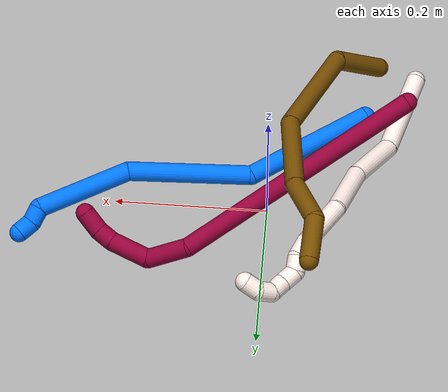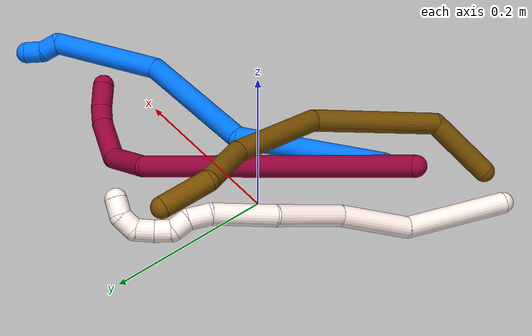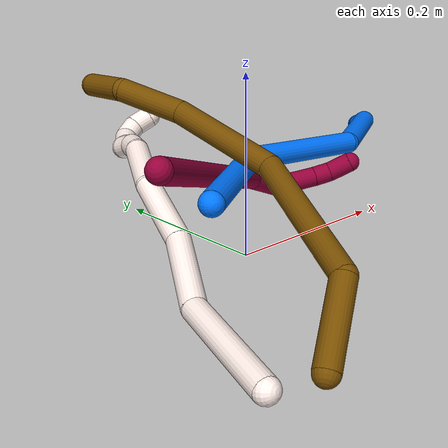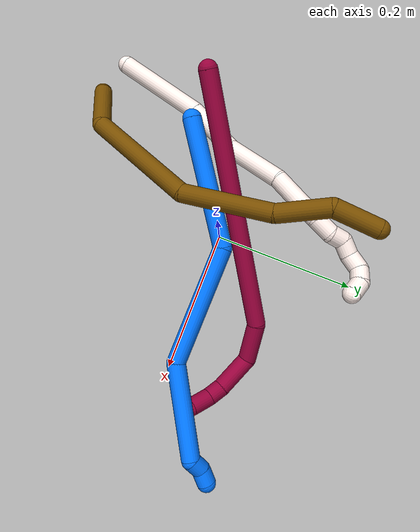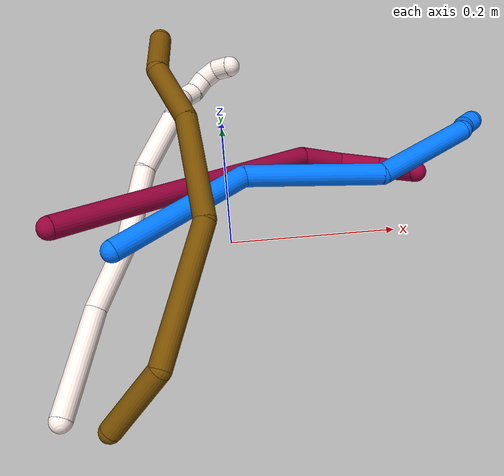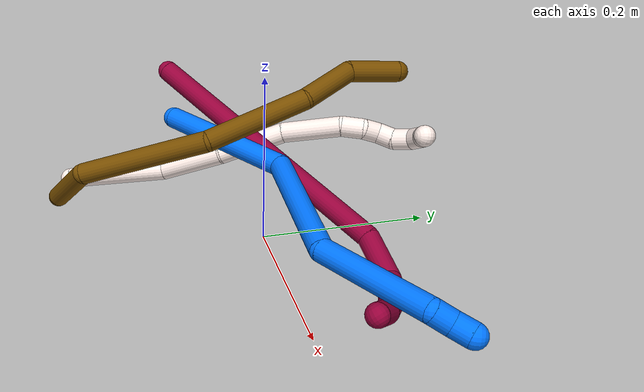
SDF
<sdf version="1.7">
 <world name="default">
  <model name="photoneo_s_sensor">
   <static>1</static>
   <pose>0 0 2 1.57079 1.57079 3.14159</pose>
   <link name="link">
    <inertial><mass>0.1</mass></inertial>
    <sensor name="sensor" type="depth">
     <update_rate>30</update_rate>
     <camera>
      <horizontal_fov>1.22</horizontal_fov>
      <image><width>1920</width><height>1200</height><format>B8G8R8</format></image>
      <clip><near>0.1</near><far>4</far></clip>
      <depth_camera><output>points</output></depth_camera>
     </camera>
     <plugin name="camera_plugin" filename="libgazebo_ros_depth_camera.so">
      <baseline>0.2</baseline>
      <alwaysOn>1</alwaysOn>
      <updateRate>0.0</updateRate>
      <cameraName>camera_ir</cameraName>
      <imageTopicName>/camera/color/image_raw</imageTopicName>
      <cameraInfoTopicName>/camera/color/camera_info</cameraInfoTopicName>
      <depthImageTopicName>/camera/depth/image_raw</depthImageTopicName>
      <depthImageCameraInfoTopicName>/camera/depth/camera_info</depthImageCameraInfoTopicName>
      <pointCloudTopicName>/camera/depth/points</pointCloudTopicName>
      <frameName>fr_optical</frameName>
      <pointCloudCutoff>0.1</pointCloudCutoff>
      <pointCloudCutoffMax>2.0</pointCloudCutoffMax>
      <distortionK1>0</distortionK1>
      <distortionK2>0</distortionK2>
      <distortionK3>0</distortionK3>
      <distortionT1>0</distortionT1>
      <distortionT2>0</distortionT2>
      <CxPrime>0</CxPrime>
      <Cx>0</Cx>
      <Cy>0</Cy>
      <focalLength>0</focalLength>
      <hackBaseline>0</hackBaseline>
     </plugin>
    </sensor>
   </link>
  </model>
  <model name="8">
   <static>0</static>
   <link name="8">
    <collision name="collision-cylinder-e_1_1_4">
     <pose>0.035701 0.059109 -0.155393 -2.77811 0.211523 -1.04767</pose>
     <geometry><cylinder><radius>0.0125</radius><length>0.340091</length></cylinder></geometry>
     <surface>
      <friction><ode><mu>1.16</mu><mu2>1.16</mu2><slip1>0</slip1><slip2>0</slip2></ode></friction>
      <contact><ode><kp>1e+06</kp><kd>1</kd><max_vel>0</max_vel><min_depth>0.001</min_depth></ode></contact>
     </surface>
    </collision>
    <visual name="visual-cylinder-e_1_1_4">
     <pose>0.035701 0.059109 -0.155393 -2.77811 0.211523 -1.04767</pose>
     <geometry><cylinder><radius>0.0125</radius><length>0.340091</length></cylinder></geometry>
     <material><ambient>0.584314 0 0.227451 1</ambient></material>
    </visual>
    <collision name="collision-cylinder-e_2_4_5">
     <pose>0.083953 0.118422 -0.335914 -3.1335 0.463249 -3.10729</pose>
     <geometry><cylinder><radius>0.0125</radius><length>0.056178</length></cylinder></geometry>
     <surface>
      <friction><ode><mu>1.16</mu><mu2>1.16</mu2><slip1>0</slip1><slip2>0</slip2></ode></friction>
      <contact><ode><kp>1e+06</kp><kd>1</kd><max_vel>0</max_vel><min_depth>0.001</min_depth></ode></contact>
     </surface>
    </collision>
    <visual name="visual-cylinder-e_2_4_5">
     <pose>0.083953 0.118422 -0.335914 -3.1335 0.463249 -3.10729</pose>
     <geometry><cylinder><radius>0.0125</radius><length>0.056178</length></cylinder></geometry>
     <material><ambient>0.584314 0 0.227451 1</ambient></material>
    </visual>
    <collision name="collision-cylinder-e_3_5_6">
     <pose>0.120848 0.116862 -0.370821 2.96326 1.18323 2.87703</pose>
     <geometry><cylinder><radius>0.0125</radius><length>0.052586</length></cylinder></geometry>
     <surface>
      <friction><ode><mu>1.16</mu><mu2>1.16</mu2><slip1>0</slip1><slip2>0</slip2></ode></friction>
      <contact><ode><kp>1e+06</kp><kd>1</kd><max_vel>0</max_vel><min_depth>0.001</min_depth></ode></contact>
     </surface>
    </collision>
    <visual name="visual-cylinder-e_3_5_6">
     <pose>0.120848 0.116862 -0.370821 2.96326 1.18323 2.87703</pose>
     <geometry><cylinder><radius>0.0125</radius><length>0.052586</length></cylinder></geometry>
     <material><ambient>0.584314 0 0.227451 1</ambient></material>
    </visual>
    <collision name="collision-cylinder-e_4_6_7">
     <pose>0.155932 0.113678 -0.382267 2.43553 1.36961 2.2939</pose>
     <geometry><cylinder><radius>0.0125</radius><length>0.021926</length></cylinder></geometry>
     <surface>
      <friction><ode><mu>1.16</mu><mu2>1.16</mu2><slip1>0</slip1><slip2>0</slip2></ode></friction>
      <contact><ode><kp>1e+06</kp><kd>1</kd><max_vel>0</max_vel><min_depth>0.001</min_depth></ode></contact>
     </surface>
    </collision>
    <visual name="visual-cylinder-e_4_6_7">
     <pose>0.155932 0.113678 -0.382267 2.43553 1.36961 2.2939</pose>
     <geometry><cylinder><radius>0.0125</radius><length>0.021926</length></cylinder></geometry>
     <material><ambient>0.584314 0 0.227451 1</ambient></material>
    </visual>
    <collision name="collision-cylinder-e_5_7_2">
     <pose>0.181125 0.110848 -0.382306 0.71342 1.42286 0.621641</pose>
     <geometry><cylinder><radius>0.0125</radius><length>0.02922</length></cylinder></geometry>
     <surface>
      <friction><ode><mu>1.16</mu><mu2>1.16</mu2><slip1>0</slip1><slip2>0</slip2></ode></friction>
      <contact><ode><kp>1e+06</kp><kd>1</kd><max_vel>0</max_vel><min_depth>0.001</min_depth></ode></contact>
     </surface>
    </collision>
    <visual name="visual-cylinder-e_5_7_2">
     <pose>0.181125 0.110848 -0.382306 0.71342 1.42286 0.621641</pose>
     <geometry><cylinder><radius>0.0125</radius><length>0.02922</length></cylinder></geometry>
     <material><ambient>0.584314 0 0.227451 1</ambient></material>
    </visual>
    <collision name="collision-sphere-2">
     <pose>0.195575 0.109438 -0.380678 0 -0 0</pose>
     <geometry><sphere><radius>0.0125</radius></sphere></geometry>
     <surface>
      <friction><ode><mu>1.16</mu><mu2>1.16</mu2><slip1>0</slip1><slip2>0</slip2></ode></friction>
      <contact><ode><kp>1e+06</kp><kd>1</kd><max_vel>0</max_vel><min_depth>0.001</min_depth></ode></contact>
     </surface>
    </collision>
    <visual name="visual-sphere-2">
     <pose>0.195575 0.109438 -0.380678 0 -0 0</pose>
     <geometry><sphere><radius>0.0125</radius></sphere></geometry>
     <material><ambient>0.584314 0 0.227451 1</ambient></material>
    </visual>
    <collision name="collision-sphere-7">
     <pose>0.166674 0.112257 -0.383934 0 -0 0</pose>
     <geometry><sphere><radius>0.0125</radius></sphere></geometry>
     <surface>
      <friction><ode><mu>1.16</mu><mu2>1.16</mu2><slip1>0</slip1><slip2>0</slip2></ode></friction>
      <contact><ode><kp>1e+06</kp><kd>1</kd><max_vel>0</max_vel><min_depth>0.001</min_depth></ode></contact>
     </surface>
    </collision>
    <visual name="visual-sphere-7">
     <pose>0.166674 0.112257 -0.383934 0 -0 0</pose>
     <geometry><sphere><radius>0.0125</radius></sphere></geometry>
     <material><ambient>0.584314 0 0.227451 1</ambient></material>
    </visual>
    <collision name="collision-sphere-6">
     <pose>0.145191 0.1151 -0.3806 0 -0 0</pose>
     <geometry><sphere><radius>0.0125</radius></sphere></geometry>
     <surface>
      <friction><ode><mu>1.16</mu><mu2>1.16</mu2><slip1>0</slip1><slip2>0</slip2></ode></friction>
      <contact><ode><kp>1e+06</kp><kd>1</kd><max_vel>0</max_vel><min_depth>0.001</min_depth></ode></contact>
     </surface>
    </collision>
    <visual name="visual-sphere-6">
     <pose>0.145191 0.1151 -0.3806 0 -0 0</pose>
     <geometry><sphere><radius>0.0125</radius></sphere></geometry>
     <material><ambient>0.584314 0 0.227451 1</ambient></material>
    </visual>
    <collision name="collision-sphere-5">
     <pose>0.096505 0.118625 -0.361042 0 -0 0</pose>
     <geometry><sphere><radius>0.0125</radius></sphere></geometry>
     <surface>
      <friction><ode><mu>1.16</mu><mu2>1.16</mu2><slip1>0</slip1><slip2>0</slip2></ode></friction>
      <contact><ode><kp>1e+06</kp><kd>1</kd><max_vel>0</max_vel><min_depth>0.001</min_depth></ode></contact>
     </surface>
    </collision>
    <visual name="visual-sphere-5">
     <pose>0.096505 0.118625 -0.361042 0 -0 0</pose>
     <geometry><sphere><radius>0.0125</radius></sphere></geometry>
     <material><ambient>0.584314 0 0.227451 1</ambient></material>
    </visual>
    <collision name="collision-sphere-1">
     <geometry><sphere><radius>0.0125</radius></sphere></geometry>
     <surface>
      <friction><ode><mu>1.16</mu><mu2>1.16</mu2><slip1>0</slip1><slip2>0</slip2></ode></friction>
      <contact><ode><kp>1e+06</kp><kd>1</kd><max_vel>0</max_vel><min_depth>0.001</min_depth></ode></contact>
     </surface>
    </collision>
    <visual name="visual-sphere-1">
     <geometry><sphere><radius>0.0125</radius></sphere></geometry>
     <material><ambient>0.584314 0 0.227451 1</ambient></material>
    </visual>
    <collision name="collision-sphere-4">
     <pose>0.071402 0.118219 -0.310786 0 -0 0</pose>
     <geometry><sphere><radius>0.0125</radius></sphere></geometry>
     <surface>
      <friction><ode><mu>1.16</mu><mu2>1.16</mu2><slip1>0</slip1><slip2>0</slip2></ode></friction>
      <contact><ode><kp>1e+06</kp><kd>1</kd><max_vel>0</max_vel><min_depth>0.001</min_depth></ode></contact>
     </surface>
    </collision>
    <visual name="visual-sphere-4">
     <pose>0.071402 0.118219 -0.310786 0 -0 0</pose>
     <geometry><sphere><radius>0.0125</radius></sphere></geometry>
     <material><ambient>0.584314 0 0.227451 1</ambient></material>
    </visual>
    <inertial>
     <pose>0.063848 0.077264 -0.221542 0 -0 0</pose>
     <mass>0.5</mass>
     <inertia>
      <ixx>-0.001183</ixx>
      <ixy>0</ixy>
      <ixz>0</ixz>
      <iyy>-0.004066</iyy>
      <iyz>0</iyz>
      <izz>-0.001889</izz>
     </inertia>
    </inertial>
   </link>
   <pose>-0.174503 -0.081376 0.152872 0.720522 -0.45246 -0.578175</pose>
  </model>
  <model name="11">
   <static>0</static>
   <link name="11">
    <collision name="collision-cylinder-e_1_1_4">
     <pose>-0.02375 0.01765 0.055049 -0.310275 -0.389811 0.061728</pose>
     <geometry><cylinder><radius>0.0125</radius><length>0.124996</length></cylinder></geometry>
     <surface>
      <friction><ode><mu>1.16</mu><mu2>1.16</mu2><slip1>0</slip1><slip2>0</slip2></ode></friction>
      <contact><ode><kp>1e+06</kp><kd>1</kd><max_vel>0</max_vel><min_depth>0.001</min_depth></ode></contact>
     </surface>
    </collision>
    <visual name="visual-cylinder-e_1_1_4">
     <pose>-0.02375 0.01765 0.055049 -0.310275 -0.389811 0.061728</pose>
     <geometry><cylinder><radius>0.0125</radius><length>0.124996</length></cylinder></geometry>
     <material><ambient>1 0.933333 0.909804 1</ambient></material>
    </visual>
    <collision name="collision-cylinder-e_2_4_5">
     <pose>-0.071442 0.057791 0.137362 -0.689734 -0.595413 0.219551</pose>
     <geometry><cylinder><radius>0.0125</radius><length>0.085377</length></cylinder></geometry>
     <surface>
      <friction><ode><mu>1.16</mu><mu2>1.16</mu2><slip1>0</slip1><slip2>0</slip2></ode></friction>
      <contact><ode><kp>1e+06</kp><kd>1</kd><max_vel>0</max_vel><min_depth>0.001</min_depth></ode></contact>
     </surface>
    </collision>
    <visual name="visual-cylinder-e_2_4_5">
     <pose>-0.071442 0.057791 0.137362 -0.689734 -0.595413 0.219551</pose>
     <geometry><cylinder><radius>0.0125</radius><length>0.085377</length></cylinder></geometry>
     <material><ambient>1 0.933333 0.909804 1</ambient></material>
    </visual>
    <collision name="collision-cylinder-e_3_5_6">
     <pose>-0.111569 0.10283 0.196499 -0.615733 -0.392976 0.126422</pose>
     <geometry><cylinder><radius>0.0125</radius><length>0.084531</length></cylinder></geometry>
     <surface>
      <friction><ode><mu>1.16</mu><mu2>1.16</mu2><slip1>0</slip1><slip2>0</slip2></ode></friction>
      <contact><ode><kp>1e+06</kp><kd>1</kd><max_vel>0</max_vel><min_depth>0.001</min_depth></ode></contact>
     </surface>
    </collision>
    <visual name="visual-cylinder-e_3_5_6">
     <pose>-0.111569 0.10283 0.196499 -0.615733 -0.392976 0.126422</pose>
     <geometry><cylinder><radius>0.0125</radius><length>0.084531</length></cylinder></geometry>
     <material><ambient>1 0.933333 0.909804 1</ambient></material>
    </visual>
    <collision name="collision-cylinder-e_4_6_7">
     <pose>-0.149147 0.139326 0.255356 -0.477023 -0.61361 0.153754</pose>
     <geometry><cylinder><radius>0.0125</radius><length>0.074302</length></cylinder></geometry>
     <surface>
      <friction><ode><mu>1.16</mu><mu2>1.16</mu2><slip1>0</slip1><slip2>0</slip2></ode></friction>
      <contact><ode><kp>1e+06</kp><kd>1</kd><max_vel>0</max_vel><min_depth>0.001</min_depth></ode></contact>
     </surface>
    </collision>
    <visual name="visual-cylinder-e_4_6_7">
     <pose>-0.149147 0.139326 0.255356 -0.477023 -0.61361 0.153754</pose>
     <geometry><cylinder><radius>0.0125</radius><length>0.074302</length></cylinder></geometry>
     <material><ambient>1 0.933333 0.909804 1</ambient></material>
    </visual>
    <collision name="collision-cylinder-e_5_7_8">
     <pose>-0.177402 0.15474 0.29345 -0.131408 -0.549425 0.037085</pose>
     <geometry><cylinder><radius>0.0125</radius><length>0.026285</length></cylinder></geometry>
     <surface>
      <friction><ode><mu>1.16</mu><mu2>1.16</mu2><slip1>0</slip1><slip2>0</slip2></ode></friction>
      <contact><ode><kp>1e+06</kp><kd>1</kd><max_vel>0</max_vel><min_depth>0.001</min_depth></ode></contact>
     </surface>
    </collision>
    <visual name="visual-cylinder-e_5_7_8">
     <pose>-0.177402 0.15474 0.29345 -0.131408 -0.549425 0.037085</pose>
     <geometry><cylinder><radius>0.0125</radius><length>0.026285</length></cylinder></geometry>
     <material><ambient>1 0.933333 0.909804 1</ambient></material>
    </visual>
    <collision name="collision-cylinder-e_6_8_9">
     <pose>-0.186452 0.15475 0.314282 0.148944 -0.218895 -0.016397</pose>
     <geometry><cylinder><radius>0.0125</radius><length>0.020138</length></cylinder></geometry>
     <surface>
      <friction><ode><mu>1.16</mu><mu2>1.16</mu2><slip1>0</slip1><slip2>0</slip2></ode></friction>
      <contact><ode><kp>1e+06</kp><kd>1</kd><max_vel>0</max_vel><min_depth>0.001</min_depth></ode></contact>
     </surface>
    </collision>
    <visual name="visual-cylinder-e_6_8_9">
     <pose>-0.186452 0.15475 0.314282 0.148944 -0.218895 -0.016397</pose>
     <geometry><cylinder><radius>0.0125</radius><length>0.020138</length></cylinder></geometry>
     <material><ambient>1 0.933333 0.909804 1</ambient></material>
    </visual>
    <collision name="collision-cylinder-e_7_9_10">
     <pose>-0.196867 0.152903 0.330421 0.060492 -0.907454 -0.029507</pose>
     <geometry><cylinder><radius>0.0125</radius><length>0.020886</length></cylinder></geometry>
     <surface>
      <friction><ode><mu>1.16</mu><mu2>1.16</mu2><slip1>0</slip1><slip2>0</slip2></ode></friction>
      <contact><ode><kp>1e+06</kp><kd>1</kd><max_vel>0</max_vel><min_depth>0.001</min_depth></ode></contact>
     </surface>
    </collision>
    <visual name="visual-cylinder-e_7_9_10">
     <pose>-0.196867 0.152903 0.330421 0.060492 -0.907454 -0.029507</pose>
     <geometry><cylinder><radius>0.0125</radius><length>0.020886</length></cylinder></geometry>
     <material><ambient>1 0.933333 0.909804 1</ambient></material>
    </visual>
    <collision name="collision-cylinder-e_8_10_11">
     <pose>-0.212645 0.155962 0.344405 -0.427596 -0.737223 0.167338</pose>
     <geometry><cylinder><radius>0.0125</radius><length>0.022459</length></cylinder></geometry>
     <surface>
      <friction><ode><mu>1.16</mu><mu2>1.16</mu2><slip1>0</slip1><slip2>0</slip2></ode></friction>
      <contact><ode><kp>1e+06</kp><kd>1</kd><max_vel>0</max_vel><min_depth>0.001</min_depth></ode></contact>
     </surface>
    </collision>
    <visual name="visual-cylinder-e_8_10_11">
     <pose>-0.212645 0.155962 0.344405 -0.427596 -0.737223 0.167338</pose>
     <geometry><cylinder><radius>0.0125</radius><length>0.022459</length></cylinder></geometry>
     <material><ambient>1 0.933333 0.909804 1</ambient></material>
    </visual>
    <collision name="collision-cylinder-e_9_11_12">
     <pose>-0.228898 0.164607 0.352433 -1.48189 -1.03074 0.956184</pose>
     <geometry><cylinder><radius>0.0125</radius><length>0.020298</length></cylinder></geometry>
     <surface>
      <friction><ode><mu>1.16</mu><mu2>1.16</mu2><slip1>0</slip1><slip2>0</slip2></ode></friction>
      <contact><ode><kp>1e+06</kp><kd>1</kd><max_vel>0</max_vel><min_depth>0.001</min_depth></ode></contact>
     </surface>
    </collision>
    <visual name="visual-cylinder-e_9_11_12">
     <pose>-0.228898 0.164607 0.352433 -1.48189 -1.03074 0.956184</pose>
     <geometry><cylinder><radius>0.0125</radius><length>0.020298</length></cylinder></geometry>
     <material><ambient>1 0.933333 0.909804 1</ambient></material>
    </visual>
    <collision name="collision-cylinder-e_10_12_2">
     <pose>-0.245735 0.17357 0.347691 -2.5155 -0.902177 1.96343</pose>
     <geometry><cylinder><radius>0.0125</radius><length>0.020726</length></cylinder></geometry>
     <surface>
      <friction><ode><mu>1.16</mu><mu2>1.16</mu2><slip1>0</slip1><slip2>0</slip2></ode></friction>
      <contact><ode><kp>1e+06</kp><kd>1</kd><max_vel>0</max_vel><min_depth>0.001</min_depth></ode></contact>
     </surface>
    </collision>
    <visual name="visual-cylinder-e_10_12_2">
     <pose>-0.245735 0.17357 0.347691 -2.5155 -0.902177 1.96343</pose>
     <geometry><cylinder><radius>0.0125</radius><length>0.020726</length></cylinder></geometry>
     <material><ambient>1 0.933333 0.909804 1</ambient></material>
    </visual>
    <collision name="collision-sphere-2">
     <pose>-0.253866 0.177334 0.342486 0 -0 0</pose>
     <geometry><sphere><radius>0.0125</radius></sphere></geometry>
     <surface>
      <friction><ode><mu>1.16</mu><mu2>1.16</mu2><slip1>0</slip1><slip2>0</slip2></ode></friction>
      <contact><ode><kp>1e+06</kp><kd>1</kd><max_vel>0</max_vel><min_depth>0.001</min_depth></ode></contact>
     </surface>
    </collision>
    <visual name="visual-sphere-2">
     <pose>-0.253866 0.177334 0.342486 0 -0 0</pose>
     <geometry><sphere><radius>0.0125</radius></sphere></geometry>
     <material><ambient>1 0.933333 0.909804 1</ambient></material>
    </visual>
    <collision name="collision-sphere-12">
     <pose>-0.237603 0.169805 0.352897 0 -0 0</pose>
     <geometry><sphere><radius>0.0125</radius></sphere></geometry>
     <surface>
      <friction><ode><mu>1.16</mu><mu2>1.16</mu2><slip1>0</slip1><slip2>0</slip2></ode></friction>
      <contact><ode><kp>1e+06</kp><kd>1</kd><max_vel>0</max_vel><min_depth>0.001</min_depth></ode></contact>
     </surface>
    </collision>
    <visual name="visual-sphere-12">
     <pose>-0.237603 0.169805 0.352897 0 -0 0</pose>
     <geometry><sphere><radius>0.0125</radius></sphere></geometry>
     <material><ambient>1 0.933333 0.909804 1</ambient></material>
    </visual>
    <collision name="collision-sphere-11">
     <pose>-0.220194 0.159409 0.35197 0 -0 0</pose>
     <geometry><sphere><radius>0.0125</radius></sphere></geometry>
     <surface>
      <friction><ode><mu>1.16</mu><mu2>1.16</mu2><slip1>0</slip1><slip2>0</slip2></ode></friction>
      <contact><ode><kp>1e+06</kp><kd>1</kd><max_vel>0</max_vel><min_depth>0.001</min_depth></ode></contact>
     </surface>
    </collision>
    <visual name="visual-sphere-11">
     <pose>-0.220194 0.159409 0.35197 0 -0 0</pose>
     <geometry><sphere><radius>0.0125</radius></sphere></geometry>
     <material><ambient>1 0.933333 0.909804 1</ambient></material>
    </visual>
    <collision name="collision-sphere-10">
     <pose>-0.205096 0.152514 0.33684 0 -0 0</pose>
     <geometry><sphere><radius>0.0125</radius></sphere></geometry>
     <surface>
      <friction><ode><mu>1.16</mu><mu2>1.16</mu2><slip1>0</slip1><slip2>0</slip2></ode></friction>
      <contact><ode><kp>1e+06</kp><kd>1</kd><max_vel>0</max_vel><min_depth>0.001</min_depth></ode></contact>
     </surface>
    </collision>
    <visual name="visual-sphere-10">
     <pose>-0.205096 0.152514 0.33684 0 -0 0</pose>
     <geometry><sphere><radius>0.0125</radius></sphere></geometry>
     <material><ambient>1 0.933333 0.909804 1</ambient></material>
    </visual>
    <collision name="collision-sphere-9">
     <pose>-0.188638 0.153292 0.324002 0 -0 0</pose>
     <geometry><sphere><radius>0.0125</radius></sphere></geometry>
     <surface>
      <friction><ode><mu>1.16</mu><mu2>1.16</mu2><slip1>0</slip1><slip2>0</slip2></ode></friction>
      <contact><ode><kp>1e+06</kp><kd>1</kd><max_vel>0</max_vel><min_depth>0.001</min_depth></ode></contact>
     </surface>
    </collision>
    <visual name="visual-sphere-9">
     <pose>-0.188638 0.153292 0.324002 0 -0 0</pose>
     <geometry><sphere><radius>0.0125</radius></sphere></geometry>
     <material><ambient>1 0.933333 0.909804 1</ambient></material>
    </visual>
    <collision name="collision-sphere-4">
     <pose>-0.0475 0.035301 0.110098 0 -0 0</pose>
     <geometry><sphere><radius>0.0125</radius></sphere></geometry>
     <surface>
      <friction><ode><mu>1.16</mu><mu2>1.16</mu2><slip1>0</slip1><slip2>0</slip2></ode></friction>
      <contact><ode><kp>1e+06</kp><kd>1</kd><max_vel>0</max_vel><min_depth>0.001</min_depth></ode></contact>
     </surface>
    </collision>
    <visual name="visual-sphere-4">
     <pose>-0.0475 0.035301 0.110098 0 -0 0</pose>
     <geometry><sphere><radius>0.0125</radius></sphere></geometry>
     <material><ambient>1 0.933333 0.909804 1</ambient></material>
    </visual>
    <collision name="collision-sphere-1">
     <geometry><sphere><radius>0.0125</radius></sphere></geometry>
     <surface>
      <friction><ode><mu>1.16</mu><mu2>1.16</mu2><slip1>0</slip1><slip2>0</slip2></ode></friction>
      <contact><ode><kp>1e+06</kp><kd>1</kd><max_vel>0</max_vel><min_depth>0.001</min_depth></ode></contact>
     </surface>
    </collision>
    <visual name="visual-sphere-1">
     <geometry><sphere><radius>0.0125</radius></sphere></geometry>
     <material><ambient>1 0.933333 0.909804 1</ambient></material>
    </visual>
    <collision name="collision-sphere-8">
     <pose>-0.184265 0.156209 0.304562 0 -0 0</pose>
     <geometry><sphere><radius>0.0125</radius></sphere></geometry>
     <surface>
      <friction><ode><mu>1.16</mu><mu2>1.16</mu2><slip1>0</slip1><slip2>0</slip2></ode></friction>
      <contact><ode><kp>1e+06</kp><kd>1</kd><max_vel>0</max_vel><min_depth>0.001</min_depth></ode></contact>
     </surface>
    </collision>
    <visual name="visual-sphere-8">
     <pose>-0.184265 0.156209 0.304562 0 -0 0</pose>
     <geometry><sphere><radius>0.0125</radius></sphere></geometry>
     <material><ambient>1 0.933333 0.909804 1</ambient></material>
    </visual>
    <collision name="collision-sphere-5">
     <pose>-0.095384 0.08028 0.164626 0 -0 0</pose>
     <geometry><sphere><radius>0.0125</radius></sphere></geometry>
     <surface>
      <friction><ode><mu>1.16</mu><mu2>1.16</mu2><slip1>0</slip1><slip2>0</slip2></ode></friction>
      <contact><ode><kp>1e+06</kp><kd>1</kd><max_vel>0</max_vel><min_depth>0.001</min_depth></ode></contact>
     </surface>
    </collision>
    <visual name="visual-sphere-5">
     <pose>-0.095384 0.08028 0.164626 0 -0 0</pose>
     <geometry><sphere><radius>0.0125</radius></sphere></geometry>
     <material><ambient>1 0.933333 0.909804 1</ambient></material>
    </visual>
    <collision name="collision-sphere-6">
     <pose>-0.127754 0.12538 0.228373 0 -0 0</pose>
     <geometry><sphere><radius>0.0125</radius></sphere></geometry>
     <surface>
      <friction><ode><mu>1.16</mu><mu2>1.16</mu2><slip1>0</slip1><slip2>0</slip2></ode></friction>
      <contact><ode><kp>1e+06</kp><kd>1</kd><max_vel>0</max_vel><min_depth>0.001</min_depth></ode></contact>
     </surface>
    </collision>
    <visual name="visual-sphere-6">
     <pose>-0.127754 0.12538 0.228373 0 -0 0</pose>
     <geometry><sphere><radius>0.0125</radius></sphere></geometry>
     <material><ambient>1 0.933333 0.909804 1</ambient></material>
    </visual>
    <collision name="collision-sphere-7">
     <pose>-0.170539 0.153272 0.282339 0 -0 0</pose>
     <geometry><sphere><radius>0.0125</radius></sphere></geometry>
     <surface>
      <friction><ode><mu>1.16</mu><mu2>1.16</mu2><slip1>0</slip1><slip2>0</slip2></ode></friction>
      <contact><ode><kp>1e+06</kp><kd>1</kd><max_vel>0</max_vel><min_depth>0.001</min_depth></ode></contact>
     </surface>
    </collision>
    <visual name="visual-sphere-7">
     <pose>-0.170539 0.153272 0.282339 0 -0 0</pose>
     <geometry><sphere><radius>0.0125</radius></sphere></geometry>
     <material><ambient>1 0.933333 0.909804 1</ambient></material>
    </visual>
    <inertial>
     <pose>-0.113252 0.094007 0.194462 0 -0 0</pose>
     <mass>0.5</mass>
     <inertia>
      <ixx>0.000297</ixx>
      <ixy>0</ixy>
      <ixz>0</ixz>
      <iyy>0.000341</iyy>
      <iyz>0</iyz>
      <izz>4.9e-05</izz>
     </inertia>
    </inertial>
   </link>
   <pose>-0.184035 -0.215979 0.011949 1.76383 -0.004634 -3.0007</pose>
  </model>
  <model name="12">
   <static>0</static>
   <link name="12">
    <collision name="collision-cylinder-e_1_1_4">
     <pose>-2e-06 -3e-06 -0.042265 3.14153 -4.5e-05 -1.198</pose>
     <geometry><cylinder><radius>0.0125</radius><length>0.08453</length></cylinder></geometry>
     <surface>
      <friction><ode><mu>1.16</mu><mu2>1.16</mu2><slip1>0</slip1><slip2>0</slip2></ode></friction>
      <contact><ode><kp>1e+06</kp><kd>1</kd><max_vel>0</max_vel><min_depth>0.001</min_depth></ode></contact>
     </surface>
    </collision>
    <visual name="visual-cylinder-e_1_1_4">
     <pose>-2e-06 -3e-06 -0.042265 3.14153 -4.5e-05 -1.198</pose>
     <geometry><cylinder><radius>0.0125</radius><length>0.08453</length></cylinder></geometry>
     <material><ambient>0.466667 0.301961 0 1</ambient></material>
    </visual>
    <collision name="collision-cylinder-e_2_4_5">
     <pose>0.015545 0.049299 -0.14534 -2.4603 0.196058 -0.541275</pose>
     <geometry><cylinder><radius>0.0125</radius><length>0.159631</length></cylinder></geometry>
     <surface>
      <friction><ode><mu>1.16</mu><mu2>1.16</mu2><slip1>0</slip1><slip2>0</slip2></ode></friction>
      <contact><ode><kp>1e+06</kp><kd>1</kd><max_vel>0</max_vel><min_depth>0.001</min_depth></ode></contact>
     </surface>
    </collision>
    <visual name="visual-cylinder-e_2_4_5">
     <pose>0.015545 0.049299 -0.14534 -2.4603 0.196058 -0.541275</pose>
     <geometry><cylinder><radius>0.0125</radius><length>0.159631</length></cylinder></geometry>
     <material><ambient>0.466667 0.301961 0 1</ambient></material>
    </visual>
    <collision name="collision-cylinder-e_3_5_6">
     <pose>0.063863 0.142486 -0.235663 -2.16287 0.554743 -0.981885</pose>
     <geometry><cylinder><radius>0.0125</radius><length>0.124429</length></cylinder></geometry>
     <surface>
      <friction><ode><mu>1.16</mu><mu2>1.16</mu2><slip1>0</slip1><slip2>0</slip2></ode></friction>
      <contact><ode><kp>1e+06</kp><kd>1</kd><max_vel>0</max_vel><min_depth>0.001</min_depth></ode></contact>
     </surface>
    </collision>
    <visual name="visual-cylinder-e_3_5_6">
     <pose>0.063863 0.142486 -0.235663 -2.16287 0.554743 -0.981885</pose>
     <geometry><cylinder><radius>0.0125</radius><length>0.124429</length></cylinder></geometry>
     <material><ambient>0.466667 0.301961 0 1</ambient></material>
    </visual>
    <collision name="collision-cylinder-e_4_6_7">
     <pose>0.122017 0.20942 -0.273241 -1.90732 0.804749 -1.0805</pose>
     <geometry><cylinder><radius>0.0125</radius><length>0.070447</length></cylinder></geometry>
     <surface>
      <friction><ode><mu>1.16</mu><mu2>1.16</mu2><slip1>0</slip1><slip2>0</slip2></ode></friction>
      <contact><ode><kp>1e+06</kp><kd>1</kd><max_vel>0</max_vel><min_depth>0.001</min_depth></ode></contact>
     </surface>
    </collision>
    <visual name="visual-cylinder-e_4_6_7">
     <pose>0.122017 0.20942 -0.273241 -1.90732 0.804749 -1.0805</pose>
     <geometry><cylinder><radius>0.0125</radius><length>0.070447</length></cylinder></geometry>
     <material><ambient>0.466667 0.301961 0 1</ambient></material>
    </visual>
    <collision name="collision-cylinder-e_5_7_2">
     <pose>0.153926 0.260114 -0.292368 -1.95148 0.215721 -0.31724</pose>
     <geometry><cylinder><radius>0.0125</radius><length>0.060963</length></cylinder></geometry>
     <surface>
      <friction><ode><mu>1.16</mu><mu2>1.16</mu2><slip1>0</slip1><slip2>0</slip2></ode></friction>
      <contact><ode><kp>1e+06</kp><kd>1</kd><max_vel>0</max_vel><min_depth>0.001</min_depth></ode></contact>
     </surface>
    </collision>
    <visual name="visual-cylinder-e_5_7_2">
     <pose>0.153926 0.260114 -0.292368 -1.95148 0.215721 -0.31724</pose>
     <geometry><cylinder><radius>0.0125</radius><length>0.060963</length></cylinder></geometry>
     <material><ambient>0.466667 0.301961 0 1</ambient></material>
    </visual>
    <collision name="collision-sphere-2">
     <pose>0.16045 0.287757 -0.303431 0 -0 0</pose>
     <geometry><sphere><radius>0.0125</radius></sphere></geometry>
     <surface>
      <friction><ode><mu>1.16</mu><mu2>1.16</mu2><slip1>0</slip1><slip2>0</slip2></ode></friction>
      <contact><ode><kp>1e+06</kp><kd>1</kd><max_vel>0</max_vel><min_depth>0.001</min_depth></ode></contact>
     </surface>
    </collision>
    <visual name="visual-sphere-2">
     <pose>0.16045 0.287757 -0.303431 0 -0 0</pose>
     <geometry><sphere><radius>0.0125</radius></sphere></geometry>
     <material><ambient>0.466667 0.301961 0 1</ambient></material>
    </visual>
    <collision name="collision-sphere-7">
     <pose>0.147401 0.23247 -0.281305 0 -0 0</pose>
     <geometry><sphere><radius>0.0125</radius></sphere></geometry>
     <surface>
      <friction><ode><mu>1.16</mu><mu2>1.16</mu2><slip1>0</slip1><slip2>0</slip2></ode></friction>
      <contact><ode><kp>1e+06</kp><kd>1</kd><max_vel>0</max_vel><min_depth>0.001</min_depth></ode></contact>
     </surface>
    </collision>
    <visual name="visual-sphere-7">
     <pose>0.147401 0.23247 -0.281305 0 -0 0</pose>
     <geometry><sphere><radius>0.0125</radius></sphere></geometry>
     <material><ambient>0.466667 0.301961 0 1</ambient></material>
    </visual>
    <collision name="collision-sphere-6">
     <pose>0.096633 0.186369 -0.265177 0 -0 0</pose>
     <geometry><sphere><radius>0.0125</radius></sphere></geometry>
     <surface>
      <friction><ode><mu>1.16</mu><mu2>1.16</mu2><slip1>0</slip1><slip2>0</slip2></ode></friction>
      <contact><ode><kp>1e+06</kp><kd>1</kd><max_vel>0</max_vel><min_depth>0.001</min_depth></ode></contact>
     </surface>
    </collision>
    <visual name="visual-sphere-6">
     <pose>0.096633 0.186369 -0.265177 0 -0 0</pose>
     <geometry><sphere><radius>0.0125</radius></sphere></geometry>
     <material><ambient>0.466667 0.301961 0 1</ambient></material>
    </visual>
    <collision name="collision-sphere-5">
     <pose>0.031093 0.098603 -0.206149 0 -0 0</pose>
     <geometry><sphere><radius>0.0125</radius></sphere></geometry>
     <surface>
      <friction><ode><mu>1.16</mu><mu2>1.16</mu2><slip1>0</slip1><slip2>0</slip2></ode></friction>
      <contact><ode><kp>1e+06</kp><kd>1</kd><max_vel>0</max_vel><min_depth>0.001</min_depth></ode></contact>
     </surface>
    </collision>
    <visual name="visual-sphere-5">
     <pose>0.031093 0.098603 -0.206149 0 -0 0</pose>
     <geometry><sphere><radius>0.0125</radius></sphere></geometry>
     <material><ambient>0.466667 0.301961 0 1</ambient></material>
    </visual>
    <collision name="collision-sphere-1">
     <geometry><sphere><radius>0.0125</radius></sphere></geometry>
     <surface>
      <friction><ode><mu>1.16</mu><mu2>1.16</mu2><slip1>0</slip1><slip2>0</slip2></ode></friction>
      <contact><ode><kp>1e+06</kp><kd>1</kd><max_vel>0</max_vel><min_depth>0.001</min_depth></ode></contact>
     </surface>
    </collision>
    <visual name="visual-sphere-1">
     <geometry><sphere><radius>0.0125</radius></sphere></geometry>
     <material><ambient>0.466667 0.301961 0 1</ambient></material>
    </visual>
    <collision name="collision-sphere-4">
     <pose>-4e-06 -6e-06 -0.08453 0 -0 0</pose>
     <geometry><sphere><radius>0.0125</radius></sphere></geometry>
     <surface>
      <friction><ode><mu>1.16</mu><mu2>1.16</mu2><slip1>0</slip1><slip2>0</slip2></ode></friction>
      <contact><ode><kp>1e+06</kp><kd>1</kd><max_vel>0</max_vel><min_depth>0.001</min_depth></ode></contact>
     </surface>
    </collision>
    <visual name="visual-sphere-4">
     <pose>-4e-06 -6e-06 -0.08453 0 -0 0</pose>
     <geometry><sphere><radius>0.0125</radius></sphere></geometry>
     <material><ambient>0.466667 0.301961 0 1</ambient></material>
    </visual>
    <inertial>
     <pose>0.056814 0.112418 -0.186339 0 -0 0</pose>
     <mass>0.5</mass>
     <inertia>
      <ixx>6.3e-05</ixx>
      <ixy>0</ixy>
      <ixz>0</ixz>
      <iyy>-0.000556</iyy>
      <iyz>0</iyz>
      <izz>-0.000576</izz>
     </inertia>
    </inertial>
   </link>
   <pose>-0.133943 -0.232701 0.012665 -2.51719 -0.625402 2.7706</pose>
  </model>
  <model name="14">
   <static>0</static>
   <link name="14">
    <collision name="collision-cylinder-e_1_1_4">
     <pose>0.025165 0.042837 -0.069941 -2.59205 0.29771 -0.977799</pose>
     <geometry><cylinder><radius>0.0125</radius><length>0.171581</length></cylinder></geometry>
     <surface>
      <friction><ode><mu>1.16</mu><mu2>1.16</mu2><slip1>0</slip1><slip2>0</slip2></ode></friction>
      <contact><ode><kp>1e+06</kp><kd>1</kd><max_vel>0</max_vel><min_depth>0.001</min_depth></ode></contact>
     </surface>
    </collision>
    <visual name="visual-cylinder-e_1_1_4">
     <pose>0.025165 0.042837 -0.069941 -2.59205 0.29771 -0.977799</pose>
     <geometry><cylinder><radius>0.0125</radius><length>0.171581</length></cylinder></geometry>
     <material><ambient>0 0.462745 1 1</ambient></material>
    </visual>
    <collision name="collision-cylinder-e_2_4_5">
     <pose>0.09235 0.14838 -0.166289 -1.96939 0.553244 -0.808155</pose>
     <geometry><cylinder><radius>0.0125</radius><length>0.15994</length></cylinder></geometry>
     <surface>
      <friction><ode><mu>1.16</mu><mu2>1.16</mu2><slip1>0</slip1><slip2>0</slip2></ode></friction>
      <contact><ode><kp>1e+06</kp><kd>1</kd><max_vel>0</max_vel><min_depth>0.001</min_depth></ode></contact>
     </surface>
    </collision>
    <visual name="visual-cylinder-e_2_4_5">
     <pose>0.09235 0.14838 -0.166289 -1.96939 0.553244 -0.808155</pose>
     <geometry><cylinder><radius>0.0125</radius><length>0.15994</length></cylinder></geometry>
     <material><ambient>0 0.462745 1 1</ambient></material>
    </visual>
    <collision name="collision-cylinder-e_3_5_6">
     <pose>0.153653 0.246967 -0.241299 -2.50567 0.308957 -0.88383</pose>
     <geometry><cylinder><radius>0.0125</radius><length>0.126828</length></cylinder></geometry>
     <surface>
      <friction><ode><mu>1.16</mu><mu2>1.16</mu2><slip1>0</slip1><slip2>0</slip2></ode></friction>
      <contact><ode><kp>1e+06</kp><kd>1</kd><max_vel>0</max_vel><min_depth>0.001</min_depth></ode></contact>
     </surface>
    </collision>
    <visual name="visual-cylinder-e_3_5_6">
     <pose>0.153653 0.246967 -0.241299 -2.50567 0.308957 -0.88383</pose>
     <geometry><cylinder><radius>0.0125</radius><length>0.126828</length></cylinder></geometry>
     <material><ambient>0 0.462745 1 1</ambient></material>
    </visual>
    <collision name="collision-cylinder-e_4_6_7">
     <pose>0.177325 0.281528 -0.299397 3.00355 0.429448 2.52767</pose>
     <geometry><cylinder><radius>0.0125</radius><length>0.021089</length></cylinder></geometry>
     <surface>
      <friction><ode><mu>1.16</mu><mu2>1.16</mu2><slip1>0</slip1><slip2>0</slip2></ode></friction>
      <contact><ode><kp>1e+06</kp><kd>1</kd><max_vel>0</max_vel><min_depth>0.001</min_depth></ode></contact>
     </surface>
    </collision>
    <visual name="visual-cylinder-e_4_6_7">
     <pose>0.177325 0.281528 -0.299397 3.00355 0.429448 2.52767</pose>
     <geometry><cylinder><radius>0.0125</radius><length>0.021089</length></cylinder></geometry>
     <material><ambient>0 0.462745 1 1</ambient></material>
    </visual>
    <collision name="collision-cylinder-e_5_7_2">
     <pose>0.185513 0.283381 -0.317905 -2.80312 0.378313 -1.68426</pose>
     <geometry><cylinder><radius>0.0125</radius><length>0.020562</length></cylinder></geometry>
     <surface>
      <friction><ode><mu>1.16</mu><mu2>1.16</mu2><slip1>0</slip1><slip2>0</slip2></ode></friction>
      <contact><ode><kp>1e+06</kp><kd>1</kd><max_vel>0</max_vel><min_depth>0.001</min_depth></ode></contact>
     </surface>
    </collision>
    <visual name="visual-cylinder-e_5_7_2">
     <pose>0.185513 0.283381 -0.317905 -2.80312 0.378313 -1.68426</pose>
     <geometry><cylinder><radius>0.0125</radius><length>0.020562</length></cylinder></geometry>
     <material><ambient>0 0.462745 1 1</ambient></material>
    </visual>
    <collision name="collision-sphere-2">
     <pose>0.18931 0.286553 -0.326917 0 -0 0</pose>
     <geometry><sphere><radius>0.0125</radius></sphere></geometry>
     <surface>
      <friction><ode><mu>1.16</mu><mu2>1.16</mu2><slip1>0</slip1><slip2>0</slip2></ode></friction>
      <contact><ode><kp>1e+06</kp><kd>1</kd><max_vel>0</max_vel><min_depth>0.001</min_depth></ode></contact>
     </surface>
    </collision>
    <visual name="visual-sphere-2">
     <pose>0.18931 0.286553 -0.326917 0 -0 0</pose>
     <geometry><sphere><radius>0.0125</radius></sphere></geometry>
     <material><ambient>0 0.462745 1 1</ambient></material>
    </visual>
    <collision name="collision-sphere-7">
     <pose>0.181715 0.280208 -0.308893 0 -0 0</pose>
     <geometry><sphere><radius>0.0125</radius></sphere></geometry>
     <surface>
      <friction><ode><mu>1.16</mu><mu2>1.16</mu2><slip1>0</slip1><slip2>0</slip2></ode></friction>
      <contact><ode><kp>1e+06</kp><kd>1</kd><max_vel>0</max_vel><min_depth>0.001</min_depth></ode></contact>
     </surface>
    </collision>
    <visual name="visual-sphere-7">
     <pose>0.181715 0.280208 -0.308893 0 -0 0</pose>
     <geometry><sphere><radius>0.0125</radius></sphere></geometry>
     <material><ambient>0 0.462745 1 1</ambient></material>
    </visual>
    <collision name="collision-sphere-6">
     <pose>0.172935 0.282847 -0.289901 0 -0 0</pose>
     <geometry><sphere><radius>0.0125</radius></sphere></geometry>
     <surface>
      <friction><ode><mu>1.16</mu><mu2>1.16</mu2><slip1>0</slip1><slip2>0</slip2></ode></friction>
      <contact><ode><kp>1e+06</kp><kd>1</kd><max_vel>0</max_vel><min_depth>0.001</min_depth></ode></contact>
     </surface>
    </collision>
    <visual name="visual-sphere-6">
     <pose>0.172935 0.282847 -0.289901 0 -0 0</pose>
     <geometry><sphere><radius>0.0125</radius></sphere></geometry>
     <material><ambient>0 0.462745 1 1</ambient></material>
    </visual>
    <collision name="collision-sphere-5">
     <pose>0.134371 0.211087 -0.192697 0 -0 0</pose>
     <geometry><sphere><radius>0.0125</radius></sphere></geometry>
     <surface>
      <friction><ode><mu>1.16</mu><mu2>1.16</mu2><slip1>0</slip1><slip2>0</slip2></ode></friction>
      <contact><ode><kp>1e+06</kp><kd>1</kd><max_vel>0</max_vel><min_depth>0.001</min_depth></ode></contact>
     </surface>
    </collision>
    <visual name="visual-sphere-5">
     <pose>0.134371 0.211087 -0.192697 0 -0 0</pose>
     <geometry><sphere><radius>0.0125</radius></sphere></geometry>
     <material><ambient>0 0.462745 1 1</ambient></material>
    </visual>
    <collision name="collision-sphere-1">
     <geometry><sphere><radius>0.0125</radius></sphere></geometry>
     <surface>
      <friction><ode><mu>1.16</mu><mu2>1.16</mu2><slip1>0</slip1><slip2>0</slip2></ode></friction>
      <contact><ode><kp>1e+06</kp><kd>1</kd><max_vel>0</max_vel><min_depth>0.001</min_depth></ode></contact>
     </surface>
    </collision>
    <visual name="visual-sphere-1">
     <geometry><sphere><radius>0.0125</radius></sphere></geometry>
     <material><ambient>0 0.462745 1 1</ambient></material>
    </visual>
    <collision name="collision-sphere-4">
     <pose>0.05033 0.085674 -0.139881 0 -0 0</pose>
     <geometry><sphere><radius>0.0125</radius></sphere></geometry>
     <surface>
      <friction><ode><mu>1.16</mu><mu2>1.16</mu2><slip1>0</slip1><slip2>0</slip2></ode></friction>
      <contact><ode><kp>1e+06</kp><kd>1</kd><max_vel>0</max_vel><min_depth>0.001</min_depth></ode></contact>
     </surface>
    </collision>
    <visual name="visual-sphere-4">
     <pose>0.05033 0.085674 -0.139881 0 -0 0</pose>
     <geometry><sphere><radius>0.0125</radius></sphere></geometry>
     <material><ambient>0 0.462745 1 1</ambient></material>
    </visual>
    <inertial>
     <pose>0.09226 0.148337 -0.164102 0 -0 0</pose>
     <mass>0.5</mass>
     <inertia>
      <ixx>-0.00013</ixx>
      <ixy>0</ixy>
      <ixz>0</ixz>
      <iyy>-0.000844</iyy>
      <iyz>0</iyz>
      <izz>-0.000973</izz>
     </inertia>
    </inertial>
   </link>
   <pose>-0.120645 -0.083847 0.111578 1.44948 1.03797 -0.45306</pose>
  </model>
 </world>
</sdf>
